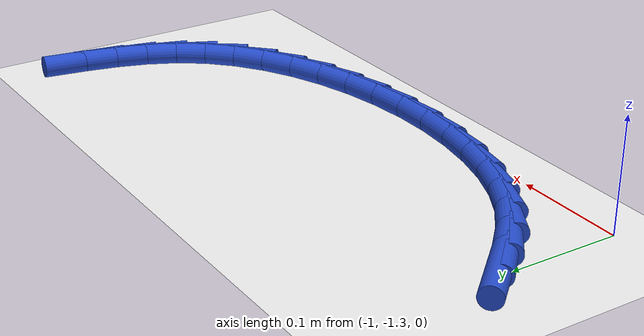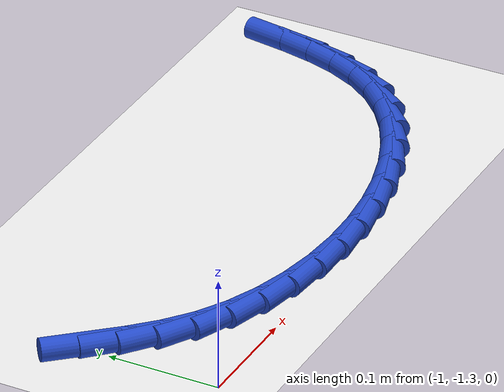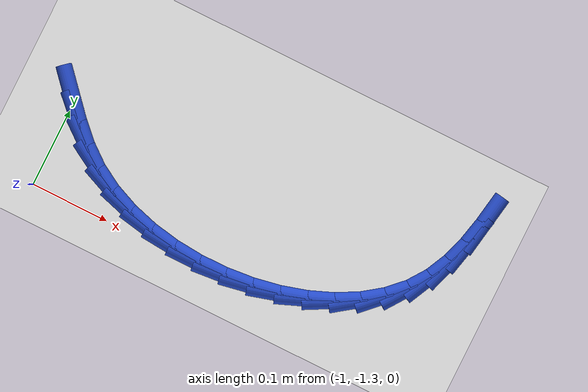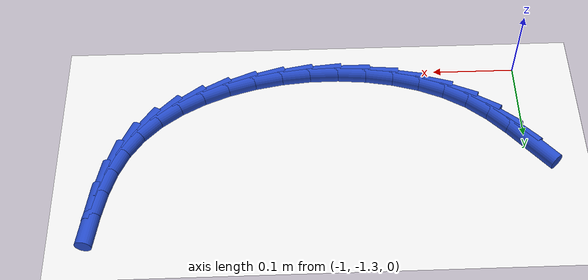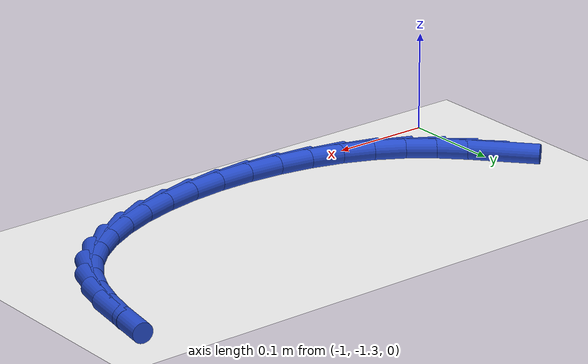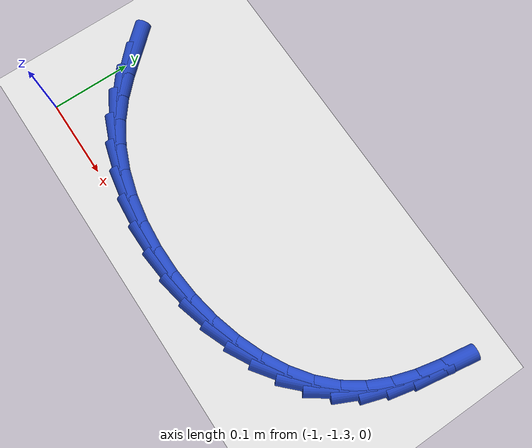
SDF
<sdf version="1.6">
 <world name="default">
  <model name="ground_plane">
   <static>1</static>
   <link name="link">
    <collision name="collision">
     <geometry><plane><normal>0 0 1</normal><size>100 100</size></plane></geometry>
     <surface><friction><ode><mu>100</mu><mu2>50</mu2></ode></friction></surface>
    </collision>
    <visual name="visual">
     <cast_shadows>0</cast_shadows>
     <geometry><plane><normal>0 0 1</normal><size>100 100</size></plane></geometry>
     <material>
      <script><uri>file://media/materials/scripts/gazebo.material</uri><name>Gazebo/WhiteGlow</name></script>
     </material>
    </visual>
   </link>
  </model>
  <model name="line">
   <link name="link_190">
    <pose>-1.0045417155552496 -1.183368191100634 0.01 0 1.57 -0.8448877130682994</pose>
    <collision name="collision">
     <geometry><cylinder><radius>0.01</radius><length>0.08</length></cylinder></geometry>
    </collision>
    <visual name="visual">
     <material>
      <script><name>Gazebo/Blue</name><uri>file://media/materials/scripts/gazebo.material</uri></script>
     </material>
     <geometry><cylinder><radius>0.01</radius><length>0.08</length></cylinder></geometry>
    </visual>
   </link>
   <link name="link_191">
    <pose>-0.9841268250137816 -1.2063689076978308 0.01 0 1.57 -0.7820426532731031</pose>
    <collision name="collision">
     <geometry><cylinder><radius>0.01</radius><length>0.08</length></cylinder></geometry>
    </collision>
    <visual name="visual">
     <material>
      <script><name>Gazebo/Blue</name><uri>file://media/materials/scripts/gazebo.material</uri></script>
     </material>
     <geometry><cylinder><radius>0.01</radius><length>0.08</length></cylinder></geometry>
    </visual>
   </link>
   <link name="link_192">
    <pose>-0.9622631877789175 -1.2280863077719248 0.01 0 1.57 -0.6696482569857034</pose>
    <collision name="collision">
     <geometry><cylinder><radius>0.01</radius><length>0.08</length></cylinder></geometry>
    </collision>
    <visual name="visual">
     <material>
      <script><name>Gazebo/Blue</name><uri>file://media/materials/scripts/gazebo.material</uri></script>
     </material>
     <geometry><cylinder><radius>0.01</radius><length>0.08</length></cylinder></geometry>
    </visual>
   </link>
   <link name="link_193">
    <pose>-0.9378808707865502 -1.2473893447136013 0.01 0 1.57 -0.5271294994864602</pose>
    <collision name="collision">
     <geometry><cylinder><radius>0.01</radius><length>0.08</length></cylinder></geometry>
    </collision>
    <visual name="visual">
     <material>
      <script><name>Gazebo/Blue</name><uri>file://media/materials/scripts/gazebo.material</uri></script>
     </material>
     <geometry><cylinder><radius>0.01</radius><length>0.08</length></cylinder></geometry>
    </visual>
   </link>
   <link name="link_194">
    <pose>-0.9103165429784906 -1.2634336450995358 0.01 0 1.57 -0.3966984462379814</pose>
    <collision name="collision">
     <geometry><cylinder><radius>0.01</radius><length>0.08</length></cylinder></geometry>
    </collision>
    <visual name="visual">
     <material>
      <script><name>Gazebo/Blue</name><uri>file://media/materials/scripts/gazebo.material</uri></script>
     </material>
     <geometry><cylinder><radius>0.01</radius><length>0.08</length></cylinder></geometry>
    </visual>
   </link>
   <link name="link_195">
    <pose>-0.8799892469905816 -1.2761379589312387 0.01 0 1.57 -0.28185051049729376</pose>
    <collision name="collision">
     <geometry><cylinder><radius>0.01</radius><length>0.08</length></cylinder></geometry>
    </collision>
    <visual name="visual">
     <material>
      <script><name>Gazebo/Blue</name><uri>file://media/materials/scripts/gazebo.material</uri></script>
     </material>
     <geometry><cylinder><radius>0.01</radius><length>0.08</length></cylinder></geometry>
    </visual>
   </link>
   <link name="link_196">
    <pose>-0.8474961527595098 -1.2855466241810158 0.01 0 1.57 -0.17883915784805823</pose>
    <collision name="collision">
     <geometry><cylinder><radius>0.01</radius><length>0.08</length></cylinder></geometry>
    </collision>
    <visual name="visual">
     <material>
      <script><name>Gazebo/Blue</name><uri>file://media/materials/scripts/gazebo.material</uri></script>
     </material>
     <geometry><cylinder><radius>0.01</radius><length>0.08</length></cylinder></geometry>
    </visual>
   </link>
   <link name="link_197">
    <pose>-0.8134344302219623 -1.291703978821175 0.01 0 1.57 -0.08401853034380509</pose>
    <collision name="collision">
     <geometry><cylinder><radius>0.01</radius><length>0.08</length></cylinder></geometry>
    </collision>
    <visual name="visual">
     <material>
      <script><name>Gazebo/Blue</name><uri>file://media/materials/scripts/gazebo.material</uri></script>
     </material>
     <geometry><cylinder><radius>0.01</radius><length>0.08</length></cylinder></geometry>
    </visual>
   </link>
   <link name="link_198">
    <pose>-0.7784012493146254 -1.294654360824021 0.01 0 1.57 0.005994501266063718</pose>
    <collision name="collision">
     <geometry><cylinder><radius>0.01</radius><length>0.08</length></cylinder></geometry>
    </collision>
    <visual name="visual">
     <material>
      <script><name>Gazebo/Blue</name><uri>file://media/materials/scripts/gazebo.material</uri></script>
     </material>
     <geometry><cylinder><radius>0.01</radius><length>0.08</length></cylinder></geometry>
    </visual>
   </link>
   <link name="link_199">
    <pose>-0.7429937799741854 -1.29444210816186 0.01 0 1.57 0.09437810782187885</pose>
    <collision name="collision">
     <geometry><cylinder><radius>0.01</radius><length>0.08</length></cylinder></geometry>
    </collision>
    <visual name="visual">
     <material>
      <script><name>Gazebo/Blue</name><uri>file://media/materials/scripts/gazebo.material</uri></script>
     </material>
     <geometry><cylinder><radius>0.01</radius><length>0.08</length></cylinder></geometry>
    </visual>
   </link>
   <link name="link_200">
    <pose>-0.7078091921373295 -1.2911115588069988 0.01 0 1.57 0.1842558069665102</pose>
    <collision name="collision">
     <geometry><cylinder><radius>0.01</radius><length>0.08</length></cylinder></geometry>
    </collision>
    <visual name="visual">
     <material>
      <script><name>Gazebo/Blue</name><uri>file://media/materials/scripts/gazebo.material</uri></script>
     </material>
     <geometry><cylinder><radius>0.01</radius><length>0.08</length></cylinder></geometry>
    </visual>
   </link>
   <link name="link_201">
    <pose>-0.6734446557407441 -1.2847070507317435 0.01 0 1.57 0.2788779035690831</pose>
    <collision name="collision">
     <geometry><cylinder><radius>0.01</radius><length>0.08</length></cylinder></geometry>
    </collision>
    <visual name="visual">
     <material>
      <script><name>Gazebo/Blue</name><uri>file://media/materials/scripts/gazebo.material</uri></script>
     </material>
     <geometry><cylinder><radius>0.01</radius><length>0.08</length></cylinder></geometry>
    </visual>
   </link>
   <link name="link_202">
    <pose>-0.6404973407211154 -1.2752729219083998 0.01 0 1.57 0.38179443294888404</pose>
    <collision name="collision">
     <geometry><cylinder><radius>0.01</radius><length>0.08</length></cylinder></geometry>
    </collision>
    <visual name="visual">
     <material>
      <script><name>Gazebo/Blue</name><uri>file://media/materials/scripts/gazebo.material</uri></script>
     </material>
     <geometry><cylinder><radius>0.01</radius><length>0.08</length></cylinder></geometry>
    </visual>
   </link>
   <link name="link_203">
    <pose>-0.6095644170151305 -1.262853510309274 0.01 0 1.57 0.49695816746257343</pose>
    <collision name="collision">
     <geometry><cylinder><radius>0.01</radius><length>0.08</length></cylinder></geometry>
    </collision>
    <visual name="visual">
     <material>
      <script><name>Gazebo/Blue</name><uri>file://media/materials/scripts/gazebo.material</uri></script>
     </material>
     <geometry><cylinder><radius>0.01</radius><length>0.08</length></cylinder></geometry>
    </visual>
   </link>
   <link name="link_204">
    <pose>-0.581243054559476 -1.2474931539066723 0.01 0 1.57 0.6286199768721379</pose>
    <collision name="collision">
     <geometry><cylinder><radius>0.01</radius><length>0.08</length></cylinder></geometry>
    </collision>
    <visual name="visual">
     <material>
      <script><name>Gazebo/Blue</name><uri>file://media/materials/scripts/gazebo.material</uri></script>
     </material>
     <geometry><cylinder><radius>0.01</radius><length>0.08</length></cylinder></geometry>
    </visual>
   </link>
   <link name="link_205">
    <pose>-0.5561304232908383 -1.229236190672901 0.01 0 1.57 0.7807419770321703</pose>
    <collision name="collision">
     <geometry><cylinder><radius>0.01</radius><length>0.08</length></cylinder></geometry>
    </collision>
    <visual name="visual">
     <material>
      <script><name>Gazebo/Blue</name><uri>file://media/materials/scripts/gazebo.material</uri></script>
     </material>
     <geometry><cylinder><radius>0.01</radius><length>0.08</length></cylinder></geometry>
    </visual>
   </link>
   <link name="link_206">
    <pose>-0.5348236931459042 -1.208126958580267 0.01 0 1.57 0.9546534001251393</pose>
    <collision name="collision">
     <geometry><cylinder><radius>0.01</radius><length>0.08</length></cylinder></geometry>
    </collision>
    <visual name="visual">
     <material>
      <script><name>Gazebo/Blue</name><uri>file://media/materials/scripts/gazebo.material</uri></script>
     </material>
     <geometry><cylinder><radius>0.01</radius><length>0.08</length></cylinder></geometry>
    </visual>
   </link>
   <link name="link_207">
    <pose>-0.5178936758166408 -1.1842179517790934 0.01 0 1.57 1.1239919216066607</pose>
    <collision name="collision">
     <geometry><cylinder><radius>0.01</radius><length>0.08</length></cylinder></geometry>
    </collision>
    <visual name="visual">
     <material>
      <script><name>Gazebo/Blue</name><uri>file://media/materials/scripts/gazebo.material</uri></script>
     </material>
     <geometry><cylinder><radius>0.01</radius><length>0.08</length></cylinder></geometry>
    </visual>
   </link>
   <link name="link_208">
    <pose>-0.5052239987077918 -1.1577743036693093 0.01 0 1.57 1.256459627602814</pose>
    <collision name="collision">
     <geometry><cylinder><radius>0.01</radius><length>0.08</length></cylinder></geometry>
    </collision>
    <visual name="visual">
     <material>
      <script><name>Gazebo/Blue</name><uri>file://media/materials/scripts/gazebo.material</uri></script>
     </material>
     <geometry><cylinder><radius>0.01</radius><length>0.08</length></cylinder></geometry>
    </visual>
   </link>
   <link name="link_209">
    <pose>-0.49596287986031784 -1.1292887094536581 0.01 0 1.57 1.3499566047252065</pose>
    <collision name="collision">
     <geometry><cylinder><radius>0.01</radius><length>0.08</length></cylinder></geometry>
    </collision>
    <visual name="visual">
     <material>
      <script><name>Gazebo/Blue</name><uri>file://media/materials/scripts/gazebo.material</uri></script>
     </material>
     <geometry><cylinder><radius>0.01</radius><length>0.08</length></cylinder></geometry>
    </visual>
   </link>
   <link name="link_210">
    <pose>-0.4892225201441863 -1.099265009328088 0.01 0 1.57 1.4078077730995369</pose>
    <collision name="collision">
     <geometry><cylinder><radius>0.01</radius><length>0.08</length></cylinder></geometry>
    </collision>
    <visual name="visual">
     <material>
      <script><name>Gazebo/Blue</name><uri>file://media/materials/scripts/gazebo.material</uri></script>
     </material>
     <geometry><cylinder><radius>0.01</radius><length>0.08</length></cylinder></geometry>
    </visual>
   </link>
  </model>
 </world>
</sdf>
